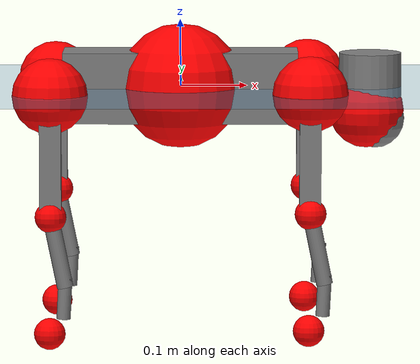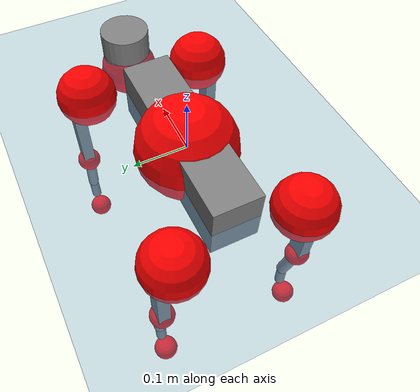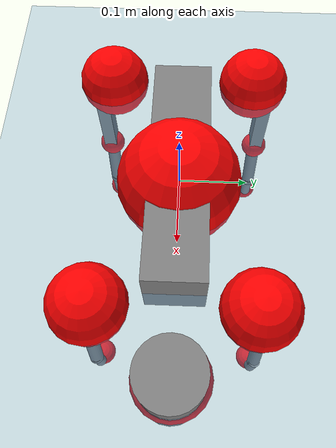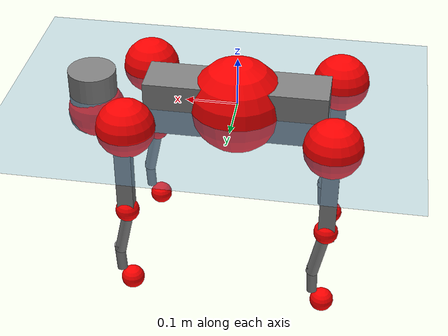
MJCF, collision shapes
<mujoco model="go2">
  <compiler angle="radian" assetdir="assets" balanceinertia="true" inertiafromgeom="false"/>

  <option timestep="0.005" density="1.2" viscosity="2e-05"/>

  <size nkey="1"/>

  <visual>
    <quality shadowsize="8192"/>
    <map shadowclip="0.5"/>
  </visual>

  <default>
    <default class="/">
      <geom contype="0" conaffinity="0" group="1" solref="-1000 -80"/>
      <site size="0.01 0.005 0.005" group="5"/>
      <general forcelimited="true" biastype="affine" gainprm="20" biasprm="0 -20 -0.5"/>
      <default class="go2">
        <joint armature="0.01" damping="0.01" frictionloss="0.2"/>
        <geom condim="1" margin="0.001"/>
        <default class="visual">
          <geom type="mesh" group="2"/>
        </default>
        <default class="collision">
          <geom group="3"/>
          <default class="foot">
            <geom size="0.022 0 0" condim="6" priority="1" friction="0.8 0.02 0.01" solimp="0.015 1 0.022"/>
          </default>
        </default>
        <default class="reward_collision_sphere">
          <geom group="5" rgba="1 0 0 1"/>
        </default>
      </default>
    </default>
  </default>

  <asset>
    <texture type="skybox" colorspace="auto" name="//unnamed_texture_0" builtin="gradient" rgb1="0.95 0.95 0.95" rgb2="0.95 0.95 0.95" width="100" height="600"/>
    <texture type="2d" colorspace="auto" name="texplane" builtin="checker" rgb1="0.345 0.575 0.748" rgb2="0.345 0.575 0.748" markrgb="1 1 1" width="512" height="512"/>
    <material name="MatPlane" class="/" texture="texplane" texuniform="true" texrepeat="2 2" specular="0.9"/>
    <material name="metal" class="/" rgba="0.9 0.95 0.95 1"/>
    <material name="black" class="/" rgba="0 0 0 1"/>
    <material name="white" class="/"/>
    <material name="gray" class="/" rgba="0.671705 0.692426 0.77427 1"/>
    <mesh name="base_0" class="/" file="base_0.obj"/>
    <mesh name="base_1" class="/" file="base_1.obj"/>
    <mesh name="base_2" class="/" file="base_2.obj"/>
    <mesh name="base_3" class="/" file="base_3.obj"/>
    <mesh name="base_4" class="/" file="base_4.obj"/>
    <mesh name="hip_0" class="/" file="hip_0.obj"/>
    <mesh name="hip_1" class="/" file="hip_1.obj"/>
    <mesh name="thigh_0" class="/" file="thigh_0.obj"/>
    <mesh name="thigh_1" class="/" file="thigh_1.obj"/>
    <mesh name="thigh_mirror_0" class="/" file="thigh_mirror_0.obj"/>
    <mesh name="thigh_mirror_1" class="/" file="thigh_mirror_1.obj"/>
    <mesh name="calf_0" class="/" file="calf_0.obj"/>
    <mesh name="calf_1" class="/" file="calf_1.obj"/>
    <mesh name="calf_mirror_0" class="/" file="calf_mirror_0.obj"/>
    <mesh name="calf_mirror_1" class="/" file="calf_mirror_1.obj"/>
    <mesh name="foot" class="/" file="foot.obj"/>
  </asset>

  <worldbody>
    <geom name="floor" class="/" size="100 100 0.125" type="plane" group="0" material="MatPlane"/>
    <light name="toplight_shadow" class="/" pos="0 0 5" dir="0.0990148 0.0990148 -0.990148" type="directional" ambient="0.04 0.04 0.04" diffuse="0.55 0.55 0.55" specular="0.12 0.12 0.12"/>
    <light name="toplight_fill" class="/" pos="0 0 5" dir="0.0990148 0.0990148 -0.990148" type="directional" castshadow="false" ambient="0.04 0.04 0.04" diffuse="0.3 0.3 0.3" specular="0.08 0.08 0.08"/>
    <body name="trunk" childclass="go2" pos="-4.77691e-05 -0.000157087 -0.000553196" quat="1 0.000302238 0.000284403 -0.000183592">
      <inertial pos="0.0194286 -0.000440866 -0.00371814" quat="0.000799175 0.713009 -0.00174594 0.701152" mass="5.84868" diaginertia="0.109658 0.0950906 0.00941089"/>
      <joint name="//unnamed_joint_0" type="free" armature="0" damping="0" frictionloss="0"/>
      <geom name="//unnamed_geom_1" class="visual" material="black" mesh="base_0"/>
      <geom name="//unnamed_geom_2" class="visual" material="black" mesh="base_1"/>
      <geom name="//unnamed_geom_3" class="visual" material="black" mesh="base_2"/>
      <geom name="//unnamed_geom_4" class="visual" material="white" mesh="base_3"/>
      <geom name="//unnamed_geom_5" class="visual" material="gray" mesh="base_4"/>
      <geom name="trunk_1" class="collision" size="0.177137 0.0440253 0.0536779" type="box"/>
      <geom name="trunk_2" class="collision" size="0.0470859 0.0423773" pos="0.286539 0 0.00825564" type="cylinder"/>
      <geom name="trunk_3" class="collision" size="0.0442607" pos="0.294582 0 -0.0495338"/>
      <geom name="//unnamed_geom_9" class="reward_collision_sphere" size="0.0941718"/>
      <geom name="//unnamed_geom_10" class="reward_collision_sphere" size="0.0565031" pos="0.281512 0 -0.0371504"/>
      <site name="imu" pos="-0.0209801 0.000374464 0.0303226" size="0.00941718"/>
      <camera name="track" pos="0 -1.98838 0" quat="0.707107 0.707107 0 0" mode="trackcom"/>
      <camera name="ego_camera" pos="0.313685 0 0.0371504" quat="-0.5 -0.5 0.5 0.5"/>
      <body name="FL_hip" pos="0.194103 0.0466343 0.00236351" quat="1 -1.87196e-05 -1.40624e-05 0.000318622">
        <inertial pos="-0.00532091 0.00252561 7.55445e-05" quat="0.496704 0.499209 0.505364 0.49868" mass="0.547974" diaginertia="0.000890576 0.000566496 0.000180132"/>
        <joint name="FL_hip_joint" pos="0 0 0" axis="1 -4.89478e-05 -6.63023e-05" range="-1.05003 1.03332" armature="0.00926577" damping="0.00156858" frictionloss="0.194492"/>
        <geom name="//unnamed_geom_11" class="visual" material="metal" mesh="hip_0"/>
        <geom name="//unnamed_geom_12" class="visual" material="gray" mesh="hip_1"/>
        <geom name="//unnamed_geom_13" class="collision" size="0.043319 0.0188344" pos="0 0.0795351 0" quat="0.707107 0.707107 0 0" type="cylinder"/>
        <geom name="//unnamed_geom_14" class="reward_collision_sphere" size="0.0565031" pos="0 0.0695932 0"/>
        <body name="FL_thigh" pos="0.000274749 0.0958448 0.00108244" quat="1 2.87346e-05 0.000163516 0.000346629">
          <inertial pos="-0.00410211 -0.0219199 -0.0277776" quat="0.829594 0.084605 -0.0194805 0.551576" mass="0.966994" diaginertia="0.00609692 0.00556663 0.000335496"/>
          <joint name="FL_thigh_joint" pos="0 0 0" axis="-0.00842263 0.999963 0.00148408" stiffness="0.00282441" range="-1.55702 3.47972" armature="0.0093596" damping="0.00621262" frictionloss="0.196895"/>
          <geom name="//unnamed_geom_15" class="visual" material="metal" mesh="thigh_0"/>
          <geom name="//unnamed_geom_16" class="visual" material="gray" mesh="thigh_1"/>
          <geom name="//unnamed_geom_17" class="collision" size="0.100293 0.011536 0.0160092" pos="0 0 -0.0879225" quat="0.707107 0 0.707107 0" type="box"/>
          <body name="FL_calf" pos="-0.00084153 -0.000339927 -0.176253" quat="1 -8.76007e-05 -4.98308e-05 0.000103553">
            <inertial pos="0.00620747 -0.000178993 -0.115185" quat="0.710604 0.00140231 -0.00439911 0.703577" mass="0.200747" diaginertia="0.00151718 0.00141607 2.03448e-05"/>
            <joint name="FL_calf_joint" pos="0 0 0" axis="-0.00398618 0.99999 0.00190408" range="-2.73921 -0.832942" armature="0.00921106" damping="0.00041089" frictionloss="0.189249"/>
            <geom name="//unnamed_geom_18" class="visual" material="gray" mesh="calf_0"/>
            <geom name="//unnamed_geom_19" class="visual" material="black" mesh="calf_1"/>
            <geom name="FL_calf0" class="collision" size="0.0113006 0.0565031" pos="0.0080432 0 -0.0495338" quat="0.994493 0 -0.104807 0" type="cylinder"/>
            <geom name="//unnamed_geom_21" class="collision" size="0.0103589 0.0306058" pos="0.020108 0 -0.122183" quat="0.999688 0 0.0249974 0" type="cylinder"/>
            <geom name="//unnamed_geom_22" class="visual" pos="0 0 -0.175845" quat="1 0 0 0" material="black" mesh="foot"/>
            <geom name="FL_foot" class="foot" size="0.0184442" pos="-0.0020108 0 -0.175845"/>
            <geom name="//unnamed_geom_24" class="reward_collision_sphere" size="0.0235429"/>
            <geom name="//unnamed_geom_25" class="reward_collision_sphere" size="0.0235429" pos="-0.0020108 0 -0.175845"/>
            <site name="FL_foot" class="foot" pos="-0.0020108 0 -0.175845" size="0.00941718"/>
          </body>
        </body>
      </body>
      <body name="FR_hip" pos="0.194205 -0.0468275 0.000854578" quat="1 -6.92972e-05 -8.9535e-05 1.60161e-05">
        <inertial pos="-0.00443518 -0.00351746 0.000346447" quat="0.496649 0.50094 0.500662 0.501733" mass="0.570139" diaginertia="0.000914264 0.000589049 0.000185847"/>
        <joint name="FR_hip_joint" pos="0 0 0" axis="0.999993 -0.00374495 -0.000714339" range="-1.03945 1.04473" armature="0.00960161" damping="0.01017" frictionloss="0.182187"/>
        <geom name="//unnamed_geom_26" class="visual" pos="0 1.46899e-09 6.30082e-08" quat="4.63268e-05 1 0 0" material="metal" mesh="hip_0"/>
        <geom name="//unnamed_geom_27" class="visual" pos="0 2.38141e-09 -1.55843e-07" quat="4.63268e-05 1 0 0" material="gray" mesh="hip_1"/>
        <geom name="//unnamed_geom_28" class="collision" size="0.043319 0.0188344" pos="0 -0.0795351 0" quat="0.707107 0.707107 0 0" type="cylinder"/>
        <geom name="//unnamed_geom_29" class="reward_collision_sphere" size="0.0565031" pos="0 -0.0695932 0"/>
        <body name="FR_thigh" pos="-0.000459895 -0.0947352 -0.0002766" quat="1 7.76105e-05 0.000253494 -9.05815e-05">
          <inertial pos="-0.00248966 0.0226162 -0.0259634" quat="0.549724 -0.0188915 0.0884046 0.830441" mass="0.955617" diaginertia="0.00613504 0.00562632 0.00033913"/>
          <joint name="FR_thigh_joint" pos="0 0 0" axis="0.000382772 -0.999995 0.00299605" range="-3.50167 1.56321" armature="0.00972995" damping="0.0136933" frictionloss="0.180451"/>
          <geom name="//unnamed_geom_30" class="visual" material="metal" mesh="thigh_mirror_0"/>
          <geom name="//unnamed_geom_31" class="visual" material="gray" mesh="thigh_mirror_1"/>
          <geom name="//unnamed_geom_32" class="collision" size="0.100293 0.011536 0.0160092" pos="0 0 -0.0879225" quat="0.707107 0 0.707107 0" type="box"/>
          <body name="FR_calf" pos="0.000683814 -0.00135483 -0.175468" quat="1 0.000186421 0.000407167 -7.08699e-06">
            <inertial pos="0.0065651 0.000790772 -0.11684" quat="0.706656 -0.00207473 -0.00262511 0.70755" mass="0.199118" diaginertia="0.00151339 0.00143634 2.03786e-05"/>
            <joint name="FR_calf_joint" pos="0 0 0" axis="0.00407103 -0.999989 0.00231069" range="0.815719 2.74001" armature="0.00942371" damping="0.0137052" frictionloss="0.179795"/>
            <geom name="//unnamed_geom_33" class="visual" material="gray" mesh="calf_mirror_0"/>
            <geom name="//unnamed_geom_34" class="visual" material="black" mesh="calf_mirror_1"/>
            <geom name="FR_calf0" class="collision" size="0.0122423 0.0565031" pos="0.010054 0 -0.0495338" quat="0.995004 0 -0.0998334 0" type="cylinder"/>
            <geom name="//unnamed_geom_36" class="collision" size="0.0103589 0.0306058" pos="0.020108 0 -0.122183" quat="0.999688 0 0.0249974 0" type="cylinder"/>
            <geom name="//unnamed_geom_37" class="visual" pos="0 0 -0.175845" quat="1 0 0 0" material="black" mesh="foot"/>
            <geom name="FR_foot" class="foot" size="0.0217553" pos="-0.0020108 0 -0.175845"/>
            <geom name="//unnamed_geom_39" class="reward_collision_sphere" size="0.0235429"/>
            <geom name="//unnamed_geom_40" class="reward_collision_sphere" size="0.0235429" pos="-0.0020108 0 -0.175845"/>
            <site name="FR_foot" class="foot" pos="-0.0020108 0 -0.175845" size="0.00941718"/>
          </body>
        </body>
      </body>
      <body name="RL_hip" pos="-0.193929 0.0470793 -0.00162553" quat="1 -1.82144e-05 -2.03878e-05 4.55711e-05">
        <inertial pos="0.00535964 0.00163664 -0.00167958" quat="0.50543 0.49826 0.497016 0.499252" mass="0.573903" diaginertia="0.000940418 0.000584581 0.0001888"/>
        <joint name="RL_hip_joint" pos="0 0 0" axis="-0.999787 0.0171802 0.011451" stiffness="0.00431858" range="-1.04927 1.03832" armature="0.00930587" damping="0.00285101" frictionloss="0.18869"/>
        <geom name="//unnamed_geom_41" class="visual" pos="-1.56666e-09 0 -3.07101e-07" quat="4.63268e-05 0 1 0" material="metal" mesh="hip_0"/>
        <geom name="//unnamed_geom_42" class="visual" pos="-2.53974e-09 0 -2.72355e-07" quat="4.63268e-05 0 1 0" material="gray" mesh="hip_1"/>
        <geom name="//unnamed_geom_43" class="collision" size="0.043319 0.0188344" pos="0 0.0795351 0" quat="0.707107 0.707107 0 0" type="cylinder"/>
        <geom name="//unnamed_geom_44" class="reward_collision_sphere" size="0.0565031" pos="0 0.0695932 0"/>
        <body name="RL_thigh" pos="-7.63738e-05 0.0954443 -0.00118539" quat="1 0.000390348 2.6047e-05 0.000121498">
          <inertial pos="-0.00527336 -0.0225982 -0.0282624" quat="0.829213 0.0853278 -0.0206579 0.551995" mass="0.977772" diaginertia="0.00603749 0.00567243 0.000336265"/>
          <joint name="RL_thigh_joint" pos="0 0 0" axis="0.000989654 0.999999 -0.000942233" stiffness="0.00716577" range="-0.503859 4.5511" armature="0.00961835" damping="0.006745" frictionloss="0.188084"/>
          <geom name="//unnamed_geom_45" class="visual" material="metal" mesh="thigh_0"/>
          <geom name="//unnamed_geom_46" class="visual" material="gray" mesh="thigh_1"/>
          <geom name="//unnamed_geom_47" class="collision" size="0.100293 0.011536 0.0160092" pos="0 0 -0.0879225" quat="0.707107 0 0.707107 0" type="box"/>
          <body name="RL_calf" pos="0.00123857 -0.00124331 -0.175628" quat="1 8.53287e-05 -0.000143871 -7.55931e-05">
            <inertial pos="0.00537682 0.000206031 -0.116164" quat="0.70985 0.00289774 -0.0079709 0.704302" mass="0.205547" diaginertia="0.00157491 0.00145934 2.07286e-05"/>
            <joint name="RL_calf_joint" pos="0 0 0" axis="-0.00717384 0.999973 0.00179075" range="-2.71348 -0.827707" armature="0.00986383" damping="0.00424101" frictionloss="0.186868"/>
            <geom name="//unnamed_geom_48" class="visual" material="gray" mesh="calf_0"/>
            <geom name="//unnamed_geom_49" class="visual" material="black" mesh="calf_1"/>
            <geom name="RL_calf0" class="collision" size="0.0122423 0.0565031" pos="0.010054 0 -0.0495338" quat="0.995004 0 -0.0998334 0" type="cylinder"/>
            <geom name="//unnamed_geom_51" class="collision" size="0.0103589 0.0306058" pos="0.020108 0 -0.122183" quat="0.999688 0 0.0249974 0" type="cylinder"/>
            <geom name="//unnamed_geom_52" class="visual" pos="0 0 -0.175845" quat="1 0 0 0" material="black" mesh="foot"/>
            <geom name="RL_foot" class="foot" size="0.0181885" pos="-0.0020108 0 -0.175845"/>
            <geom name="//unnamed_geom_54" class="reward_collision_sphere" size="0.0235429"/>
            <geom name="//unnamed_geom_55" class="reward_collision_sphere" size="0.0235429" pos="-0.0020108 0 -0.175845"/>
            <site name="RL_foot" class="foot" pos="-0.0020108 0 -0.175845" size="0.00941718"/>
          </body>
        </body>
      </body>
      <body name="RR_hip" pos="-0.19283 -0.0459164 -0.00242929" quat="1 -4.59921e-05 -8.71028e-05 -0.000195982">
        <inertial pos="0.00617011 -0.00285912 -0.00114401" quat="0.491765 0.499012 0.50157 0.507525" mass="0.556643" diaginertia="0.000889354 0.000568499 0.000180485"/>
        <joint name="RR_hip_joint" pos="0 0 0" axis="-0.999987 0.00480602 0.00185469" range="-1.05833 1.02802" armature="0.00979167" damping="0.00865374" frictionloss="0.187509"/>
        <geom name="//unnamed_geom_56" class="visual" pos="1.56627e-09 1.46899e-09 -3.70109e-07" quat="2.14617e-09 4.63268e-05 4.63268e-05 -1" material="metal" mesh="hip_0"/>
        <geom name="//unnamed_geom_57" class="visual" pos="2.5407e-09 2.38141e-09 -1.16512e-07" quat="2.14617e-09 4.63268e-05 4.63268e-05 -1" material="gray" mesh="hip_1"/>
        <geom name="//unnamed_geom_58" class="collision" size="0.043319 0.0188344" pos="0 -0.0795351 0" quat="0.707107 0.707107 0 0" type="cylinder"/>
        <geom name="//unnamed_geom_59" class="reward_collision_sphere" size="0.0565031" pos="0 -0.0695932 0"/>
        <body name="RR_thigh" pos="0.00142188 -0.0956483 -0.00159222" quat="1 -9.37539e-05 -7.77356e-05 9.54678e-05">
          <inertial pos="-0.00357248 0.0213614 -0.0269271" quat="0.551149 -0.0202856 0.0843606 0.829883" mass="0.974583" diaginertia="0.00618845 0.00572518 0.000338339"/>
          <joint name="RR_thigh_joint" pos="0 0 0" axis="-0.00760875 -0.999971 0.000207112" range="-4.55609 0.529214" armature="0.00917756" damping="0.0111249" frictionloss="0.187293"/>
          <geom name="//unnamed_geom_60" class="visual" material="metal" mesh="thigh_mirror_0"/>
          <geom name="//unnamed_geom_61" class="visual" material="gray" mesh="thigh_mirror_1"/>
          <geom name="//unnamed_geom_62" class="collision" size="0.100293 0.011536 0.0160092" pos="0 0 -0.0879225" quat="0.707107 0 0.707107 0" type="box"/>
          <body name="RR_calf" pos="-0.000131446 0.000639796 -0.176297" quat="1 0.000387396 0.000164974 5.78984e-05">
            <inertial pos="0.0062021 0.00155361 -0.11691" quat="0.703041 -0.00497026 0.00188401 0.711129" mass="0.203079" diaginertia="0.00155217 0.00142125 2.05827e-05"/>
            <joint name="RR_calf_joint" pos="0 0 0" axis="0.000485442 -0.999999 -0.00113644" stiffness="0.000351131" range="0.835993 2.74164" armature="0.00952276" damping="0.0126185" frictionloss="0.179883"/>
            <geom name="//unnamed_geom_63" class="visual" material="gray" mesh="calf_mirror_0"/>
            <geom name="//unnamed_geom_64" class="visual" material="black" mesh="calf_mirror_1"/>
            <geom name="RR_calf0" class="collision" size="0.0122423 0.0565031" pos="0.010054 0 -0.0495338" quat="0.995004 0 -0.0998334 0" type="cylinder"/>
            <geom name="//unnamed_geom_66" class="collision" size="0.0103589 0.0306058" pos="0.020108 0 -0.122183" quat="0.999688 0 0.0249974 0" type="cylinder"/>
            <geom name="//unnamed_geom_67" class="visual" pos="0 0 -0.175845" quat="1 0 0 0" material="black" mesh="foot"/>
            <geom name="RR_foot" class="foot" size="0.0223177" pos="-0.0020108 0 -0.175845"/>
            <geom name="//unnamed_geom_69" class="reward_collision_sphere" size="0.0235429"/>
            <geom name="//unnamed_geom_70" class="reward_collision_sphere" size="0.0235429" pos="-0.0020108 0 -0.175845"/>
            <site name="RR_foot" class="foot" pos="-0.0020108 0 -0.175845" size="0.00941718"/>
          </body>
        </body>
      </body>
    </body>
  </worldbody>

  <contact>
    <pair class="/" geom1="floor" geom2="FL_foot" name="//unnamed_contact_0"/>
    <pair class="/" geom1="floor" geom2="FR_foot" name="//unnamed_contact_1"/>
    <pair class="/" geom1="floor" geom2="RL_foot" name="//unnamed_contact_2"/>
    <pair class="/" geom1="floor" geom2="RR_foot" name="//unnamed_contact_3"/>
  </contact>

  <actuator>
    <general name="FL_hip" class="/" joint="FL_hip_joint" forcerange="-22.361 22.361" gainprm="19.3585" biasprm="0 -19.3585 -0.482799"/>
    <general name="FL_thigh" class="/" joint="FL_thigh_joint" forcerange="-21.3984 21.3984" gainprm="19.3585" biasprm="0 -19.3585 -0.482799"/>
    <general name="FL_calf" class="/" joint="FL_calf_joint" forcerange="-43.5078 43.5078" gainprm="19.3585" biasprm="0 -19.3585 -0.482799"/>
    <general name="FR_hip" class="/" joint="FR_hip_joint" forcerange="-22.1024 22.1024" gainprm="19.3585" biasprm="0 -19.3585 -0.482799"/>
    <general name="FR_thigh" class="/" joint="FR_thigh_joint" forcerange="-21.8619 21.8619" gainprm="19.3585" biasprm="0 -19.3585 -0.482799"/>
    <general name="FR_calf" class="/" joint="FR_calf_joint" forcerange="-41.8799 41.8799" gainprm="19.3585" biasprm="0 -19.3585 -0.482799"/>
    <general name="RL_hip" class="/" joint="RL_hip_joint" forcerange="-22.1562 22.1562" gainprm="19.3585" biasprm="0 -19.3585 -0.482799"/>
    <general name="RL_thigh" class="/" joint="RL_thigh_joint" forcerange="-22.6907 22.6907" gainprm="19.3585" biasprm="0 -19.3585 -0.482799"/>
    <general name="RL_calf" class="/" joint="RL_calf_joint" forcerange="-41.6259 41.6259" gainprm="19.3585" biasprm="0 -19.3585 -0.482799"/>
    <general name="RR_hip" class="/" joint="RR_hip_joint" forcerange="-21.9301 21.9301" gainprm="19.3585" biasprm="0 -19.3585 -0.482799"/>
    <general name="RR_thigh" class="/" joint="RR_thigh_joint" forcerange="-22.6527 22.6527" gainprm="19.3585" biasprm="0 -19.3585 -0.482799"/>
    <general name="RR_calf" class="/" joint="RR_calf_joint" forcerange="-42.8665 42.8665" gainprm="19.3585" biasprm="0 -19.3585 -0.482799"/>
  </actuator>

  <sensor>
    <gyro site="imu" name="imu_angular_velocity"/>
    <velocimeter site="imu" name="imu_linear_velocity"/>
    <framelinvel objtype="site" objname="FL_foot" name="FL_foot_global_linear_velocity"/>
    <framelinvel objtype="site" objname="FR_foot" name="FR_foot_global_linear_velocity"/>
    <framelinvel objtype="site" objname="RL_foot" name="RL_foot_global_linear_velocity"/>
    <framelinvel objtype="site" objname="RR_foot" name="RR_foot_global_linear_velocity"/>
  </sensor>

  <keyframe>
    <key name="home" qpos="0 0 0.325 1 0 0 0 0.1 0.8 -1.5 -0.1 -0.8 1.5 -0.1 0.8 -1.5 0.1 -0.8 1.5"/>
  </keyframe>
</mujoco>
